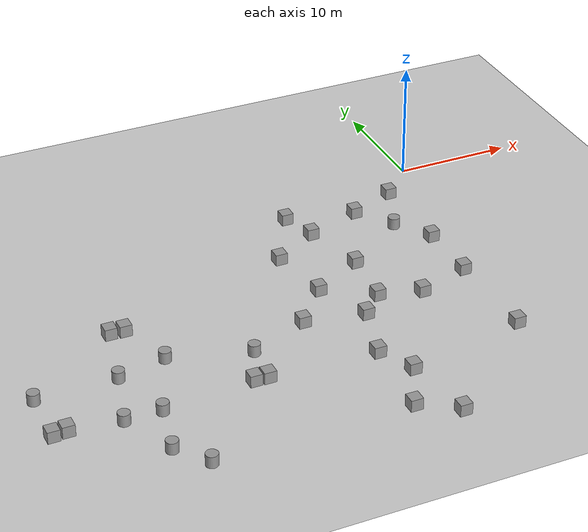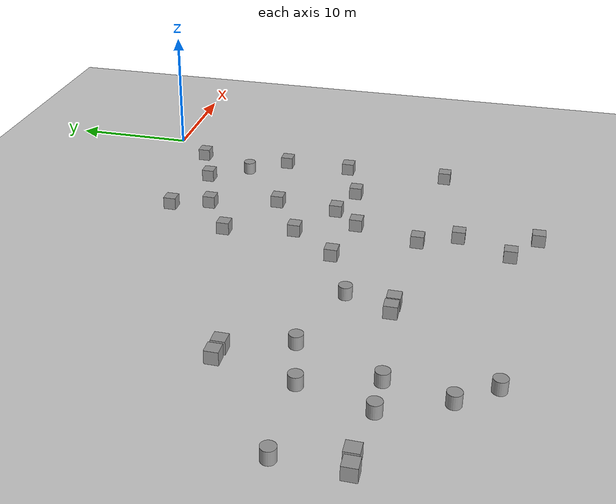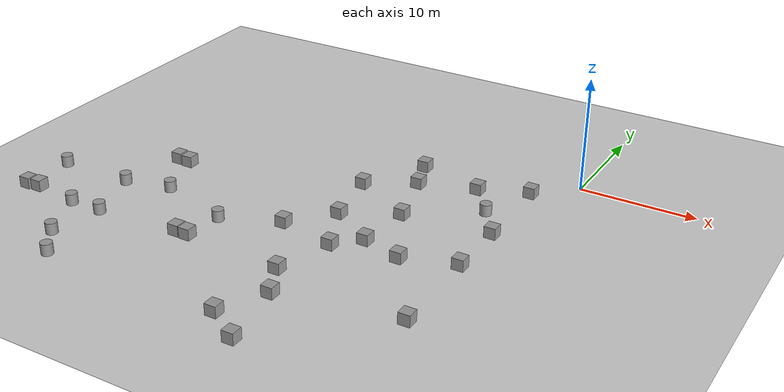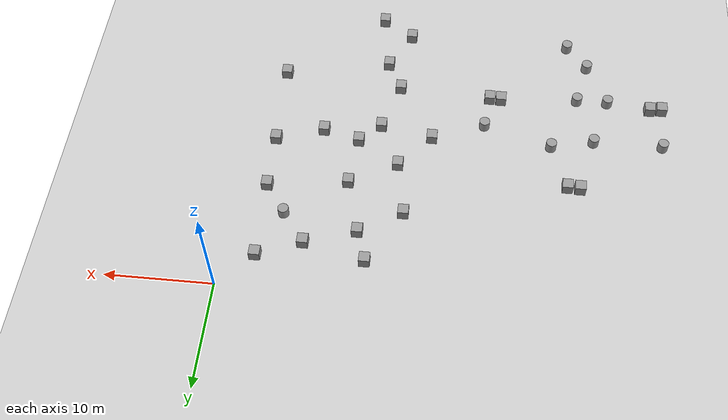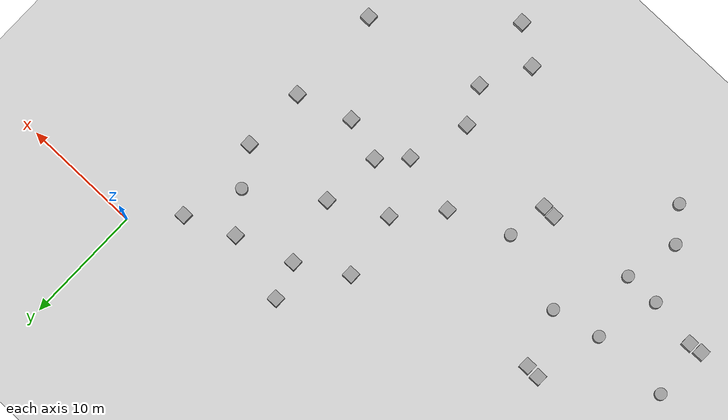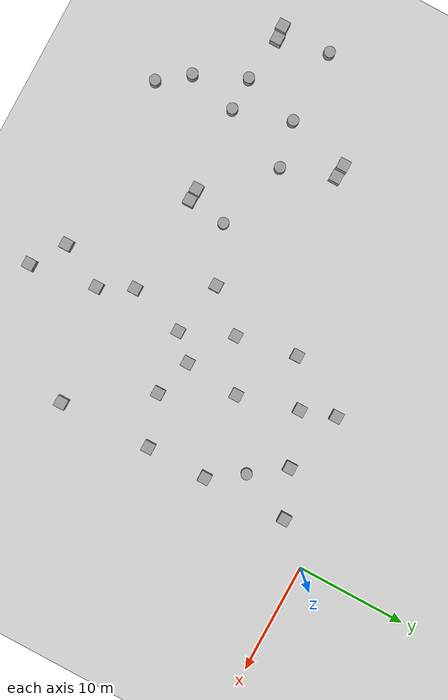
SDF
<sdf version="1.6">
 <world name="default">
  <model name="ground_plane">
   <static>1</static>
   <link name="link">
    <collision name="collision">
     <geometry><plane><normal>0 0 1</normal><size>100 100</size></plane></geometry>
     <surface><friction><ode><mu>100</mu><mu2>50</mu2></ode></friction></surface>
    </collision>
    <visual name="visual">
     <cast_shadows>0</cast_shadows>
     <geometry><plane><normal>0 0 1</normal><size>100 100</size></plane></geometry>
     <material>
      <script><uri>file://media/materials/scripts/gazebo.material</uri><name>Gazebo/Grey</name></script>
     </material>
    </visual>
   </link>
  </model>
  <model name="unit_box_2">
   <pose>-3.12527 -3.30488 0.499995 1e-05 -0 -5e-06</pose>
   <link name="link">
    <inertial>
     <mass>1</mass>
     <inertia>
      <ixx>0.166667</ixx>
      <ixy>0</ixy>
      <ixz>0</ixz>
      <iyy>0.166667</iyy>
      <iyz>0</iyz>
      <izz>0.166667</izz>
     </inertia>
    </inertial>
    <collision name="collision"><geometry><box><size>1 1 1</size></box></geometry></collision>
    <visual name="visual">
     <geometry><box><size>1 1 1</size></box></geometry>
     <material>
      <script><name>Gazebo/Grey</name><uri>file://media/materials/scripts/gazebo.material</uri></script>
     </material>
    </visual>
   </link>
  </model>
  <model name="unit_cylinder_3">
   <pose>-5 -8 0.499997 3e-06 1e-06 -0</pose>
   <link name="link">
    <inertial>
     <mass>1</mass>
     <inertia><ixx>0.145833</ixx><ixy>0</ixy><ixz>0</ixz><iyy>0.145833</iyy><iyz>0</iyz><izz>0.125</izz></inertia>
    </inertial>
    <collision name="collision">
     <geometry><cylinder><radius>0.5</radius><length>1</length></cylinder></geometry>
    </collision>
    <visual name="visual">
     <geometry><cylinder><radius>0.5</radius><length>1</length></cylinder></geometry>
     <material>
      <script><name>Gazebo/Grey</name><uri>file://media/materials/scripts/gazebo.material</uri></script>
     </material>
    </visual>
   </link>
  </model>
  <model name="unit_box_13">
   <pose>-2.99999 -11 0.499995 1e-05 -0 -5e-06</pose>
   <link name="link">
    <inertial>
     <mass>1</mass>
     <inertia>
      <ixx>0.166667</ixx>
      <ixy>0</ixy>
      <ixz>0</ixz>
      <iyy>0.166667</iyy>
      <iyz>0</iyz>
      <izz>0.166667</izz>
     </inertia>
    </inertial>
    <collision name="collision"><geometry><box><size>1 1 1</size></box></geometry></collision>
    <visual name="visual">
     <geometry><box><size>1 1 1</size></box></geometry>
     <material>
      <script><name>Gazebo/Grey</name><uri>file://media/materials/scripts/gazebo.material</uri></script>
     </material>
    </visual>
   </link>
  </model>
  <model name="unit_box_28_clone_58">
   <pose>-3 -16.5143 0.5005 -0 -0 -0</pose>
   <link name="link">
    <inertial>
     <mass>1</mass>
     <inertia>
      <ixx>0.166667</ixx>
      <ixy>0</ixy>
      <ixz>0</ixz>
      <iyy>0.166667</iyy>
      <iyz>0</iyz>
      <izz>0.166667</izz>
     </inertia>
    </inertial>
    <collision name="collision"><geometry><box><size>1 1 1</size></box></geometry></collision>
    <visual name="visual">
     <geometry><box><size>1 1 1</size></box></geometry>
     <material>
      <script><name>Gazebo/Grey</name><uri>file://media/materials/scripts/gazebo.material</uri></script>
     </material>
    </visual>
   </link>
  </model>
  <model name="unit_box_28_clone_59">
   <pose>-7.49771 -18 0.5005 -0 -0 -0</pose>
   <link name="link">
    <inertial>
     <mass>1</mass>
     <inertia>
      <ixx>0.166667</ixx>
      <ixy>0</ixy>
      <ixz>0</ixz>
      <iyy>0.166667</iyy>
      <iyz>0</iyz>
      <izz>0.166667</izz>
     </inertia>
    </inertial>
    <collision name="collision"><geometry><box><size>1 1 1</size></box></geometry></collision>
    <visual name="visual">
     <geometry><box><size>1 1 1</size></box></geometry>
     <material>
      <script><name>Gazebo/Grey</name><uri>file://media/materials/scripts/gazebo.material</uri></script>
     </material>
    </visual>
   </link>
  </model>
  <model name="unit_box_28_clone_60">
   <pose>-11 -17 0.5005 0 -0 0</pose>
   <link name="link">
    <inertial>
     <mass>1</mass>
     <inertia>
      <ixx>0.166667</ixx>
      <ixy>0</ixy>
      <ixz>0</ixz>
      <iyy>0.166667</iyy>
      <iyz>0</iyz>
      <izz>0.166667</izz>
     </inertia>
    </inertial>
    <collision name="collision"><geometry><box><size>1 1 1</size></box></geometry></collision>
    <visual name="visual">
     <geometry><box><size>1 1 1</size></box></geometry>
     <material>
      <script><name>Gazebo/Grey</name><uri>file://media/materials/scripts/gazebo.material</uri></script>
     </material>
    </visual>
   </link>
  </model>
  <model name="unit_box_28_clone_70">
   <pose>-15 -31 0.5005 -0 -0 -0</pose>
   <link name="link">
    <inertial>
     <mass>1</mass>
     <inertia>
      <ixx>0.166667</ixx>
      <ixy>0</ixy>
      <ixz>0</ixz>
      <iyy>0.166667</iyy>
      <iyz>0</iyz>
      <izz>0.166667</izz>
     </inertia>
    </inertial>
    <collision name="collision"><geometry><box><size>1 1 1</size></box></geometry></collision>
    <visual name="visual">
     <geometry><box><size>1 1 1</size></box></geometry>
     <material>
      <script><name>Gazebo/Grey</name><uri>file://media/materials/scripts/gazebo.material</uri></script>
     </material>
    </visual>
   </link>
  </model>
  <model name="unit_box_28_clone_72">
   <pose>-12 -33 0.5005 -0 -0 -0</pose>
   <link name="link">
    <inertial>
     <mass>1</mass>
     <inertia>
      <ixx>0.166667</ixx>
      <ixy>0</ixy>
      <ixz>0</ixz>
      <iyy>0.166667</iyy>
      <iyz>0</iyz>
      <izz>0.166667</izz>
     </inertia>
    </inertial>
    <collision name="collision"><geometry><box><size>1 1 1</size></box></geometry></collision>
    <visual name="visual">
     <geometry><box><size>1 1 1</size></box></geometry>
     <material>
      <script><name>Gazebo/Grey</name><uri>file://media/materials/scripts/gazebo.material</uri></script>
     </material>
    </visual>
   </link>
  </model>
  <model name="unit_box_28_clone_73">
   <pose>-13 -27 0.5005 -0 -0 -0</pose>
   <link name="link">
    <inertial>
     <mass>1</mass>
     <inertia>
      <ixx>0.166667</ixx>
      <ixy>0</ixy>
      <ixz>0</ixz>
      <iyy>0.166667</iyy>
      <iyz>0</iyz>
      <izz>0.166667</izz>
     </inertia>
    </inertial>
    <collision name="collision"><geometry><box><size>1 1 1</size></box></geometry></collision>
    <visual name="visual">
     <geometry><box><size>1 1 1</size></box></geometry>
     <material>
      <script><name>Gazebo/Grey</name><uri>file://media/materials/scripts/gazebo.material</uri></script>
     </material>
    </visual>
   </link>
  </model>
  <model name="unit_box_28_clone_74">
   <pose>-13 -19 0.5005 -0 -0 -0</pose>
   <link name="link">
    <inertial>
     <mass>1</mass>
     <inertia>
      <ixx>0.166667</ixx>
      <ixy>0</ixy>
      <ixz>0</ixz>
      <iyy>0.166667</iyy>
      <iyz>0</iyz>
      <izz>0.166667</izz>
     </inertia>
    </inertial>
    <collision name="collision"><geometry><box><size>1 1 1</size></box></geometry></collision>
    <visual name="visual">
     <geometry><box><size>1 1 1</size></box></geometry>
     <material>
      <script><name>Gazebo/Grey</name><uri>file://media/materials/scripts/gazebo.material</uri></script>
     </material>
    </visual>
   </link>
  </model>
  <model name="unit_box_28_clone_75">
   <pose>-14.4706 -24 0.5005 -0 -0 -0</pose>
   <link name="link">
    <inertial>
     <mass>1</mass>
     <inertia>
      <ixx>0.166667</ixx>
      <ixy>0</ixy>
      <ixz>0</ixz>
      <iyy>0.166667</iyy>
      <iyz>0</iyz>
      <izz>0.166667</izz>
     </inertia>
    </inertial>
    <collision name="collision"><geometry><box><size>1 1 1</size></box></geometry></collision>
    <visual name="visual">
     <geometry><box><size>1 1 1</size></box></geometry>
     <material>
      <script><name>Gazebo/Grey</name><uri>file://media/materials/scripts/gazebo.material</uri></script>
     </material>
    </visual>
   </link>
  </model>
  <model name="unit_box_28_clone_76">
   <pose>-18 -18 0.5005 0 0 -1.7e-05</pose>
   <link name="link">
    <inertial>
     <mass>1</mass>
     <inertia>
      <ixx>0.166667</ixx>
      <ixy>0</ixy>
      <ixz>0</ixz>
      <iyy>0.166667</iyy>
      <iyz>0</iyz>
      <izz>0.166667</izz>
     </inertia>
    </inertial>
    <collision name="collision"><geometry><box><size>1 1 1</size></box></geometry></collision>
    <visual name="visual">
     <geometry><box><size>1 1 1</size></box></geometry>
     <material>
      <script><name>Gazebo/Grey</name><uri>file://media/materials/scripts/gazebo.material</uri></script>
     </material>
    </visual>
   </link>
  </model>
  <model name="unit_box_28_clone_77">
   <pose>-16 -9 0.5005 -0 -0 -0</pose>
   <link name="link">
    <inertial>
     <mass>1</mass>
     <inertia>
      <ixx>0.166667</ixx>
      <ixy>0</ixy>
      <ixz>0</ixz>
      <iyy>0.166667</iyy>
      <iyz>0</iyz>
      <izz>0.166667</izz>
     </inertia>
    </inertial>
    <collision name="collision"><geometry><box><size>1 1 1</size></box></geometry></collision>
    <visual name="visual">
     <geometry><box><size>1 1 1</size></box></geometry>
     <material>
      <script><name>Gazebo/Grey</name><uri>file://media/materials/scripts/gazebo.material</uri></script>
     </material>
    </visual>
   </link>
  </model>
  <model name="unit_box_28_clone_79">
   <pose>-13 -3.53588 0.5005 -0 -0 -0</pose>
   <link name="link">
    <inertial>
     <mass>1</mass>
     <inertia>
      <ixx>0.166667</ixx>
      <ixy>0</ixy>
      <ixz>0</ixz>
      <iyy>0.166667</iyy>
      <iyz>0</iyz>
      <izz>0.166667</izz>
     </inertia>
    </inertial>
    <collision name="collision"><geometry><box><size>1 1 1</size></box></geometry></collision>
    <visual name="visual">
     <geometry><box><size>1 1 1</size></box></geometry>
     <material>
      <script><name>Gazebo/Grey</name><uri>file://media/materials/scripts/gazebo.material</uri></script>
     </material>
    </visual>
   </link>
  </model>
  <model name="unit_box_28_clone_80">
   <pose>-7.22236 -4.97433 0.499995 0 1e-05 0</pose>
   <link name="link">
    <inertial>
     <mass>1</mass>
     <inertia>
      <ixx>0.166667</ixx>
      <ixy>0</ixy>
      <ixz>0</ixz>
      <iyy>0.166667</iyy>
      <iyz>0</iyz>
      <izz>0.166667</izz>
     </inertia>
    </inertial>
    <collision name="collision"><geometry><box><size>1 1 1</size></box></geometry></collision>
    <visual name="visual">
     <geometry><box><size>1 1 1</size></box></geometry>
     <material>
      <script><name>Gazebo/Grey</name><uri>file://media/materials/scripts/gazebo.material</uri></script>
     </material>
    </visual>
   </link>
  </model>
  <model name="unit_box_28_clone_81">
   <pose>-12 -6.5782 0.5005 -0 -0 -0</pose>
   <link name="link">
    <inertial>
     <mass>1</mass>
     <inertia>
      <ixx>0.166667</ixx>
      <ixy>0</ixy>
      <ixz>0</ixz>
      <iyy>0.166667</iyy>
      <iyz>0</iyz>
      <izz>0.166667</izz>
     </inertia>
    </inertial>
    <collision name="collision"><geometry><box><size>1 1 1</size></box></geometry></collision>
    <visual name="visual">
     <geometry><box><size>1 1 1</size></box></geometry>
     <material>
      <script><name>Gazebo/Grey</name><uri>file://media/materials/scripts/gazebo.material</uri></script>
     </material>
    </visual>
   </link>
  </model>
  <model name="unit_box_28_clone_82">
   <pose>-10.5525 -12 0.5005 0 -0 1e-06</pose>
   <link name="link">
    <inertial>
     <mass>1</mass>
     <inertia>
      <ixx>0.166667</ixx>
      <ixy>0</ixy>
      <ixz>0</ixz>
      <iyy>0.166667</iyy>
      <iyz>0</iyz>
      <izz>0.166667</izz>
     </inertia>
    </inertial>
    <collision name="collision"><geometry><box><size>1 1 1</size></box></geometry></collision>
    <visual name="visual">
     <geometry><box><size>1 1 1</size></box></geometry>
     <material>
      <script><name>Gazebo/Grey</name><uri>file://media/materials/scripts/gazebo.material</uri></script>
     </material>
    </visual>
   </link>
  </model>
  <model name="unit_box_28_clone_83">
   <pose>-15 -14.4583 0.5005 -0 -0 -0</pose>
   <link name="link">
    <inertial>
     <mass>1</mass>
     <inertia>
      <ixx>0.166667</ixx>
      <ixy>0</ixy>
      <ixz>0</ixz>
      <iyy>0.166667</iyy>
      <iyz>0</iyz>
      <izz>0.166667</izz>
     </inertia>
    </inertial>
    <collision name="collision"><geometry><box><size>1 1 1</size></box></geometry></collision>
    <visual name="visual">
     <geometry><box><size>1 1 1</size></box></geometry>
     <material>
      <script><name>Gazebo/Grey</name><uri>file://media/materials/scripts/gazebo.material</uri></script>
     </material>
    </visual>
   </link>
  </model>
  <model name="unit_cylinder_11_clone_31">
   <pose>-32 -24 0.5 0 -0 0</pose>
   <link name="link">
    <inertial>
     <mass>1</mass>
     <inertia><ixx>0.145833</ixx><ixy>0</ixy><ixz>0</ixz><iyy>0.145833</iyy><iyz>0</iyz><izz>0.125</izz></inertia>
    </inertial>
    <collision name="collision">
     <geometry><cylinder><radius>0.5</radius><length>1</length></cylinder></geometry>
    </collision>
    <visual name="visual">
     <geometry><cylinder><radius>0.5</radius><length>1</length></cylinder></geometry>
     <material>
      <script><name>Gazebo/Grey</name><uri>file://media/materials/scripts/gazebo.material</uri></script>
     </material>
    </visual>
   </link>
  </model>
  <model name="unit_cylinder_11_clone_32">
   <pose>-33 -28.4342 0.5 0 -0 0</pose>
   <link name="link">
    <inertial>
     <mass>1</mass>
     <inertia><ixx>0.145833</ixx><ixy>0</ixy><ixz>0</ixz><iyy>0.145833</iyy><iyz>0</iyz><izz>0.125</izz></inertia>
    </inertial>
    <collision name="collision">
     <geometry><cylinder><radius>0.5</radius><length>1</length></cylinder></geometry>
    </collision>
    <visual name="visual">
     <geometry><cylinder><radius>0.5</radius><length>1</length></cylinder></geometry>
     <material>
      <script><name>Gazebo/Grey</name><uri>file://media/materials/scripts/gazebo.material</uri></script>
     </material>
    </visual>
   </link>
  </model>
  <model name="unit_cylinder_11_clone_34">
   <pose>-31 -31 0.5 0 -0 0</pose>
   <link name="link">
    <inertial>
     <mass>1</mass>
     <inertia><ixx>0.145833</ixx><ixy>0</ixy><ixz>0</ixz><iyy>0.145833</iyy><iyz>0</iyz><izz>0.125</izz></inertia>
    </inertial>
    <collision name="collision">
     <geometry><cylinder><radius>0.5</radius><length>1</length></cylinder></geometry>
    </collision>
    <visual name="visual">
     <geometry><cylinder><radius>0.5</radius><length>1</length></cylinder></geometry>
     <material>
      <script><name>Gazebo/Grey</name><uri>file://media/materials/scripts/gazebo.material</uri></script>
     </material>
    </visual>
   </link>
  </model>
  <model name="unit_cylinder_11_clone_35">
   <pose>-35 -24 0.5 0 -0 0</pose>
   <link name="link">
    <inertial>
     <mass>1</mass>
     <inertia><ixx>0.145833</ixx><ixy>0</ixy><ixz>0</ixz><iyy>0.145833</iyy><iyz>0</iyz><izz>0.125</izz></inertia>
    </inertial>
    <collision name="collision">
     <geometry><cylinder><radius>0.5</radius><length>1</length></cylinder></geometry>
    </collision>
    <visual name="visual">
     <geometry><cylinder><radius>0.5</radius><length>1</length></cylinder></geometry>
     <material>
      <script><name>Gazebo/Grey</name><uri>file://media/materials/scripts/gazebo.material</uri></script>
     </material>
    </visual>
   </link>
  </model>
  <model name="unit_cylinder_11_clone_39">
   <pose>-29.5129 -18.0006 0.5005 0.000941 -0 8e-06</pose>
   <link name="link">
    <inertial>
     <mass>1</mass>
     <inertia><ixx>0.145833</ixx><ixy>0</ixy><ixz>0</ixz><iyy>0.145833</iyy><iyz>0</iyz><izz>0.125</izz></inertia>
    </inertial>
    <collision name="collision">
     <geometry><cylinder><radius>0.5</radius><length>1</length></cylinder></geometry>
    </collision>
    <visual name="visual">
     <geometry><cylinder><radius>0.5</radius><length>1</length></cylinder></geometry>
     <material>
      <script><name>Gazebo/Grey</name><uri>file://media/materials/scripts/gazebo.material</uri></script>
     </material>
    </visual>
   </link>
  </model>
  <model name="unit_cylinder_11_clone_40">
   <pose>-40.2268 -18.9613 0.499991 -0 -0 -0</pose>
   <link name="link">
    <inertial>
     <mass>1</mass>
     <inertia><ixx>0.145833</ixx><ixy>0</ixy><ixz>0</ixz><iyy>0.145833</iyy><iyz>0</iyz><izz>0.125</izz></inertia>
    </inertial>
    <collision name="collision">
     <geometry><cylinder><radius>0.5</radius><length>1</length></cylinder></geometry>
    </collision>
    <visual name="visual">
     <geometry><cylinder><radius>0.5</radius><length>1</length></cylinder></geometry>
     <material>
      <script><name>Gazebo/Grey</name><uri>file://media/materials/scripts/gazebo.material</uri></script>
     </material>
    </visual>
   </link>
  </model>
  <model name="unit_cylinder_11_clone_41">
   <pose>-23 -20 0.499991 -0 -0 -0</pose>
   <link name="link">
    <inertial>
     <mass>1</mass>
     <inertia><ixx>0.145833</ixx><ixy>0</ixy><ixz>0</ixz><iyy>0.145833</iyy><iyz>0</iyz><izz>0.125</izz></inertia>
    </inertial>
    <collision name="collision">
     <geometry><cylinder><radius>0.5</radius><length>1</length></cylinder></geometry>
    </collision>
    <visual name="visual">
     <geometry><cylinder><radius>0.5</radius><length>1</length></cylinder></geometry>
     <material>
      <script><name>Gazebo/Grey</name><uri>file://media/materials/scripts/gazebo.material</uri></script>
     </material>
    </visual>
   </link>
  </model>
  <model name="unit_cylinder_11_clone_45">
   <pose>-33.593 -18.9252 0.499991 -0 -0 -0</pose>
   <link name="link">
    <inertial>
     <mass>1</mass>
     <inertia><ixx>0.145833</ixx><ixy>0</ixy><ixz>0</ixz><iyy>0.145833</iyy><iyz>0</iyz><izz>0.125</izz></inertia>
    </inertial>
    <collision name="collision">
     <geometry><cylinder><radius>0.5</radius><length>1</length></cylinder></geometry>
    </collision>
    <visual name="visual">
     <geometry><cylinder><radius>0.5</radius><length>1</length></cylinder></geometry>
     <material>
      <script><name>Gazebo/Grey</name><uri>file://media/materials/scripts/gazebo.material</uri></script>
     </material>
    </visual>
   </link>
  </model>
  <model name="unit_box_28_clone_50_clone_20">
   <pose>-2.82681 -24.9297 0.5 0 -0 0</pose>
   <link name="link">
    <inertial>
     <mass>1</mass>
     <inertia>
      <ixx>0.166667</ixx>
      <ixy>0</ixy>
      <ixz>0</ixz>
      <iyy>0.166667</iyy>
      <iyz>0</iyz>
      <izz>0.166667</izz>
     </inertia>
    </inertial>
    <collision name="collision"><geometry><box><size>1 1 1</size></box></geometry></collision>
    <visual name="visual">
     <geometry><box><size>1 1 1</size></box></geometry>
     <material>
      <script><name>Gazebo/Grey</name><uri>file://media/materials/scripts/gazebo.material</uri></script>
     </material>
    </visual>
   </link>
  </model>
  <model name="unit_box_28_clone_50_clone_23">
   <pose>-39.1571 -23.4588 0.5 0 -0 0</pose>
   <link name="link">
    <inertial>
     <mass>1</mass>
     <inertia>
      <ixx>0.166667</ixx>
      <ixy>0</ixy>
      <ixz>0</ixz>
      <iyy>0.166667</iyy>
      <iyz>0</iyz>
      <izz>0.166667</izz>
     </inertia>
    </inertial>
    <collision name="collision"><geometry><box><size>1 1 1</size></box></geometry></collision>
    <visual name="visual">
     <geometry><box><size>1 1 1</size></box></geometry>
     <material>
      <script><name>Gazebo/Grey</name><uri>file://media/materials/scripts/gazebo.material</uri></script>
     </material>
    </visual>
   </link>
  </model>
  <model name="unit_box_28_clone_50_clone_24">
   <pose>-40.3114 -23.5695 0.5 0 -0 0</pose>
   <link name="link">
    <inertial>
     <mass>1</mass>
     <inertia>
      <ixx>0.166667</ixx>
      <ixy>0</ixy>
      <ixz>0</ixz>
      <iyy>0.166667</iyy>
      <iyz>0</iyz>
      <izz>0.166667</izz>
     </inertia>
    </inertial>
    <collision name="collision"><geometry><box><size>1 1 1</size></box></geometry></collision>
    <visual name="visual">
     <geometry><box><size>1 1 1</size></box></geometry>
     <material>
      <script><name>Gazebo/Grey</name><uri>file://media/materials/scripts/gazebo.material</uri></script>
     </material>
    </visual>
   </link>
  </model>
  <model name="unit_box_28_clone_50_clone_25">
   <pose>-24.4832 -23.4306 0.5 0 -0 0</pose>
   <link name="link">
    <inertial>
     <mass>1</mass>
     <inertia>
      <ixx>0.166667</ixx>
      <ixy>0</ixy>
      <ixz>0</ixz>
      <iyy>0.166667</iyy>
      <iyz>0</iyz>
      <izz>0.166667</izz>
     </inertia>
    </inertial>
    <collision name="collision"><geometry><box><size>1 1 1</size></box></geometry></collision>
    <visual name="visual">
     <geometry><box><size>1 1 1</size></box></geometry>
     <material>
      <script><name>Gazebo/Grey</name><uri>file://media/materials/scripts/gazebo.material</uri></script>
     </material>
    </visual>
   </link>
  </model>
  <model name="unit_box_28_clone_50_clone_26">
   <pose>-23.3716 -23.4736 0.5 0 -0 0</pose>
   <link name="link">
    <inertial>
     <mass>1</mass>
     <inertia>
      <ixx>0.166667</ixx>
      <ixy>0</ixy>
      <ixz>0</ixz>
      <iyy>0.166667</iyy>
      <iyz>0</iyz>
      <izz>0.166667</izz>
     </inertia>
    </inertial>
    <collision name="collision"><geometry><box><size>1 1 1</size></box></geometry></collision>
    <visual name="visual">
     <geometry><box><size>1 1 1</size></box></geometry>
     <material>
      <script><name>Gazebo/Grey</name><uri>file://media/materials/scripts/gazebo.material</uri></script>
     </material>
    </visual>
   </link>
  </model>
  <model name="unit_box_28_clone_50_clone_27">
   <pose>-32.2852 -13.2794 0.5 0 -0 0</pose>
   <link name="link">
    <inertial>
     <mass>1</mass>
     <inertia>
      <ixx>0.166667</ixx>
      <ixy>0</ixy>
      <ixz>0</ixz>
      <iyy>0.166667</iyy>
      <iyz>0</iyz>
      <izz>0.166667</izz>
     </inertia>
    </inertial>
    <collision name="collision"><geometry><box><size>1 1 1</size></box></geometry></collision>
    <visual name="visual">
     <geometry><box><size>1 1 1</size></box></geometry>
     <material>
      <script><name>Gazebo/Grey</name><uri>file://media/materials/scripts/gazebo.material</uri></script>
     </material>
    </visual>
   </link>
  </model>
  <model name="unit_box_28_clone_50_clone_28">
   <pose>-31.0945 -13.3504 0.5 0 -0 0</pose>
   <link name="link">
    <inertial>
     <mass>1</mass>
     <inertia>
      <ixx>0.166667</ixx>
      <ixy>0</ixy>
      <ixz>0</ixz>
      <iyy>0.166667</iyy>
      <iyz>0</iyz>
      <izz>0.166667</izz>
     </inertia>
    </inertial>
    <collision name="collision"><geometry><box><size>1 1 1</size></box></geometry></collision>
    <visual name="visual">
     <geometry><box><size>1 1 1</size></box></geometry>
     <material>
      <script><name>Gazebo/Grey</name><uri>file://media/materials/scripts/gazebo.material</uri></script>
     </material>
    </visual>
   </link>
  </model>
 </world>
</sdf>
